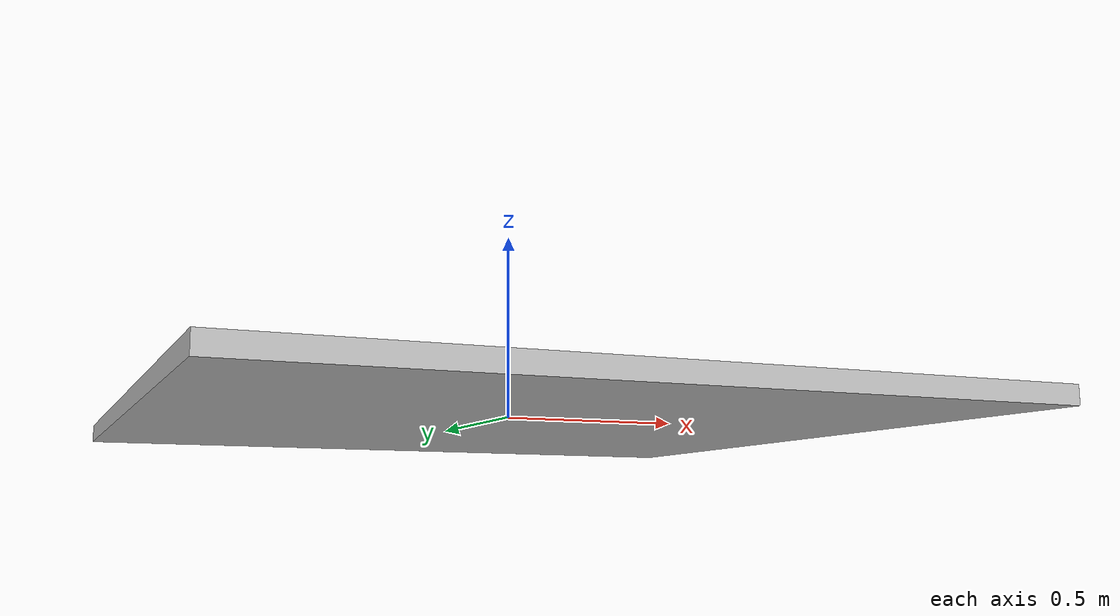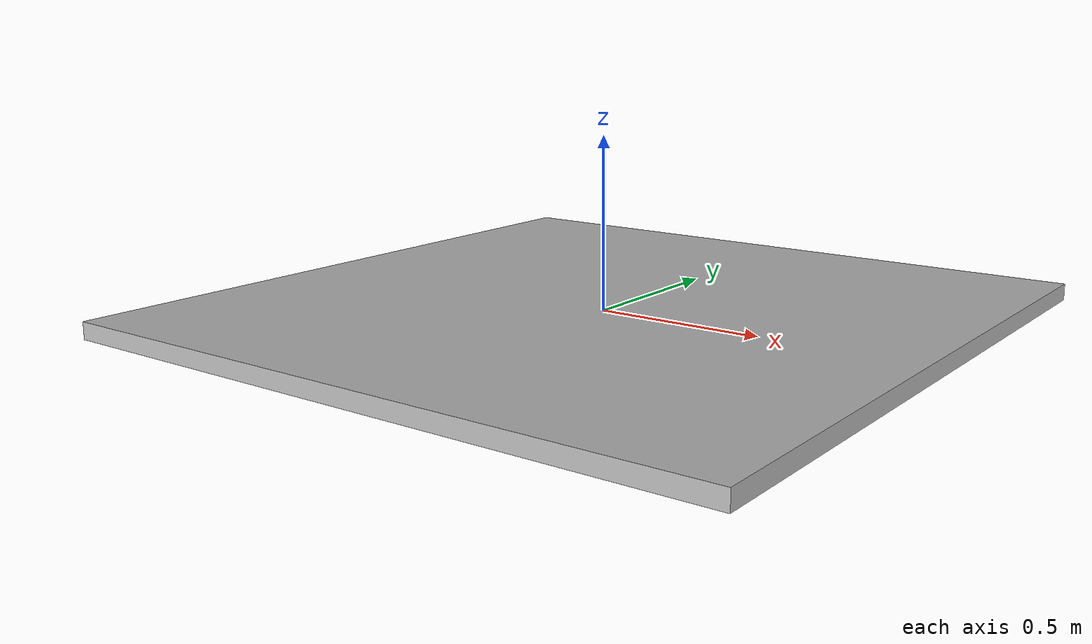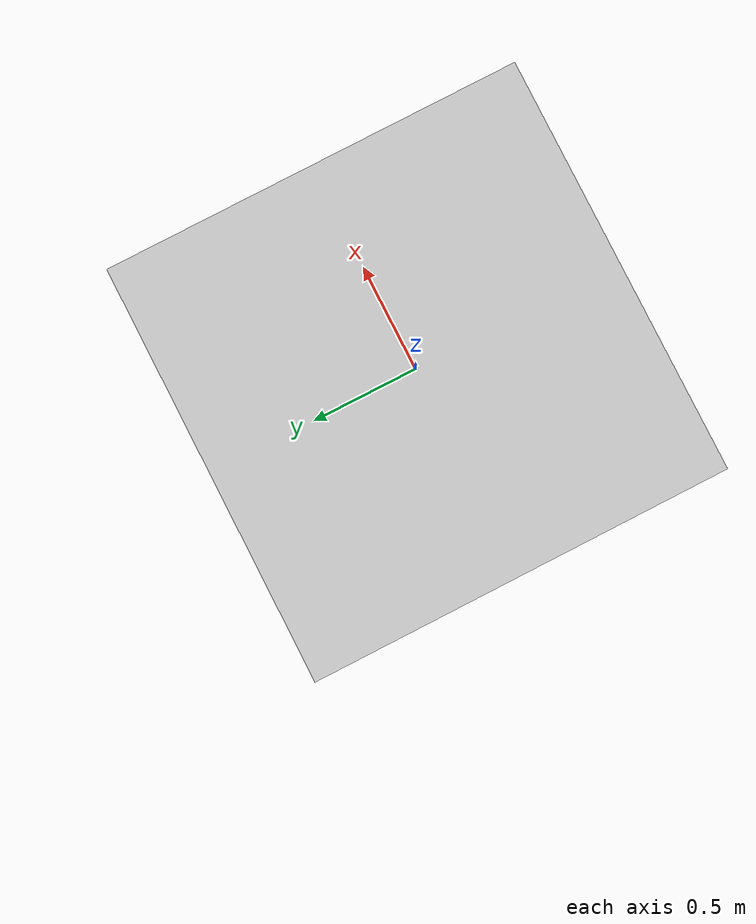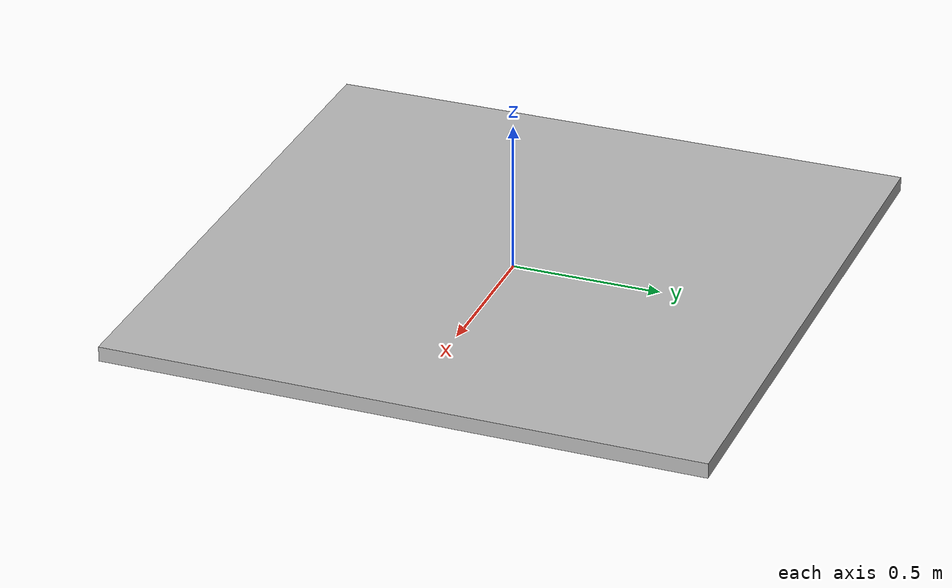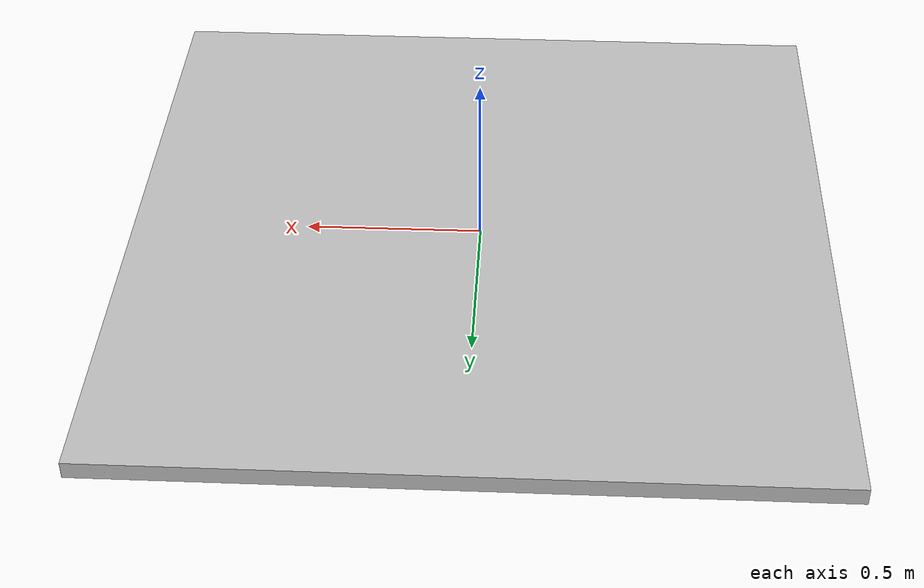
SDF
<?xml version='1.0'?>
<sdf version='1.7'>
  <model name='land_pad'>
    <link name='link'>
      <inertial>
        <mass>0.001</mass>
        <inertia>
          <ixx>0.00001</ixx>
          <ixy>0</ixy>
          <ixz>0</ixz>
          <iyy>0.00001</iyy>
          <iyz>0</iyz>
          <izz>0.00001</izz>
        </inertia>
        <pose>0 0 0 0 -0 0</pose>
      </inertial>
      <self_collide>0</self_collide>
      <enable_wind>0</enable_wind>
      <kinematic>0</kinematic>
      <pose>0 0 0 0 -0 0</pose>
      <gravity>1</gravity>
      <visual name='visual'>
        <geometry>
          <mesh>
            <scale>1 1 1</scale>
            <uri>model://land_pad/meshes/land_pad.dae</uri>
          </mesh>
        </geometry>
        <material>
          <script>
            <name>landPad/Diffuse</name>
            <uri>model://land_pad/materials/scripts</uri>
            <uri>model://land_pad/materials/textures</uri>
          </script>
          <shader type='pixel'>
            <normal_map>__default__</normal_map>
          </shader>
        </material>
        <pose>0 0 0 0 -0 0</pose>
        <transparency>0</transparency>
        <cast_shadows>1</cast_shadows>
      </visual>
      <collision name='collision'>
        <laser_retro>0</laser_retro>
        <max_contacts>10</max_contacts>
        <pose>0 0 0 0 -0 0</pose>
        <geometry>
          <box>
            <size>2.0 2.0 0.05</size>
          </box>
        </geometry>
        <surface>
          <friction>
            <ode>
              <mu>1</mu>
              <mu2>1</mu2>
              <fdir1>0 0 0</fdir1>
              <slip1>0</slip1>
              <slip2>0</slip2>
            </ode>
            <torsional>
              <coefficient>1</coefficient>
              <patch_radius>0</patch_radius>
              <surface_radius>0</surface_radius>
              <use_patch_radius>1</use_patch_radius>
              <ode>
                <slip>0</slip>
              </ode>
            </torsional>
          </friction>
          <bounce>
            <restitution_coefficient>0</restitution_coefficient>
            <threshold>1e+06</threshold>
          </bounce>
          <contact>
            <collide_without_contact>0</collide_without_contact>
            <collide_without_contact_bitmask>1</collide_without_contact_bitmask>
            <collide_bitmask>1</collide_bitmask>
            <ode>
              <soft_cfm>0</soft_cfm>
              <soft_erp>0.2</soft_erp>
              <kp>1e+13</kp>
              <kd>1</kd>
              <max_vel>0.01</max_vel>
              <min_depth>0</min_depth>
            </ode>
            <bullet>
              <split_impulse>1</split_impulse>
              <split_impulse_penetration_threshold>-0.01</split_impulse_penetration_threshold>
              <soft_cfm>0</soft_cfm>
              <soft_erp>0.2</soft_erp>
              <kp>1e+13</kp>
              <kd>1</kd>
            </bullet>
          </contact>
        </surface>
      </collision>
    </link>
    <static>1</static>
    <allow_auto_disable>1</allow_auto_disable>
  </model>
</sdf>
